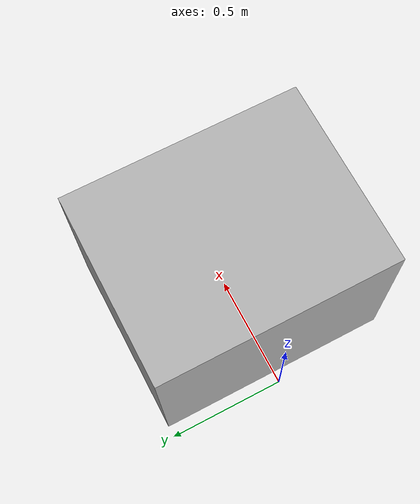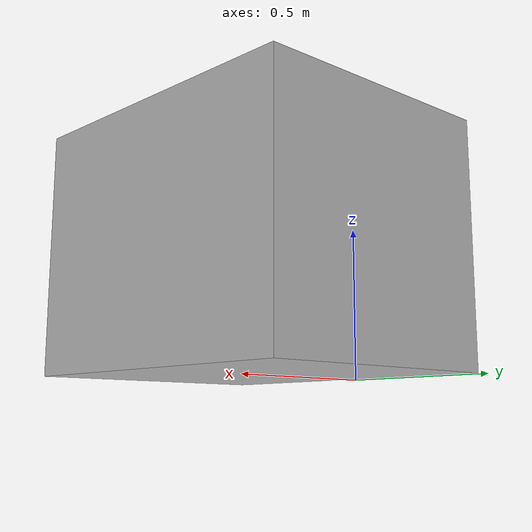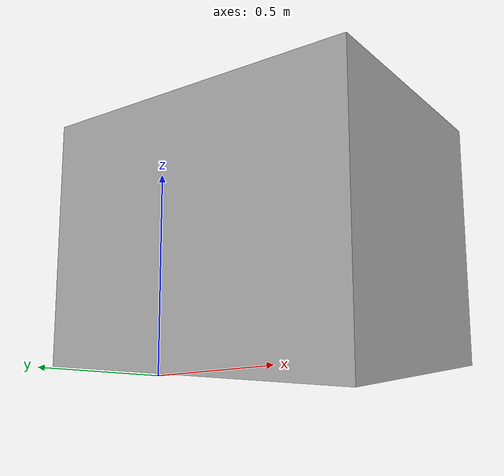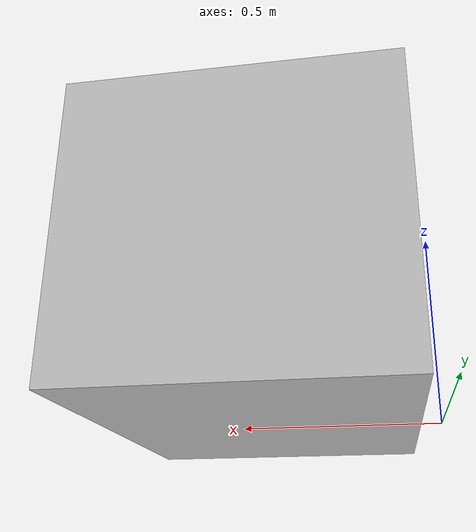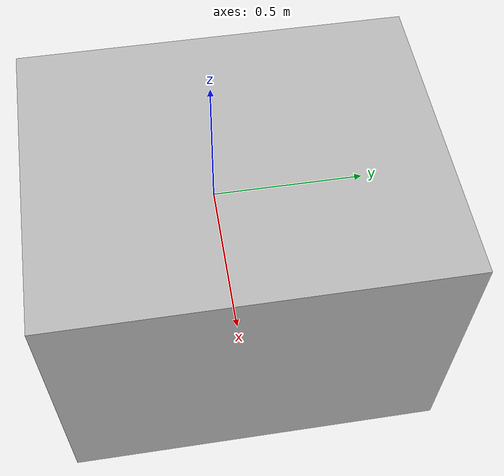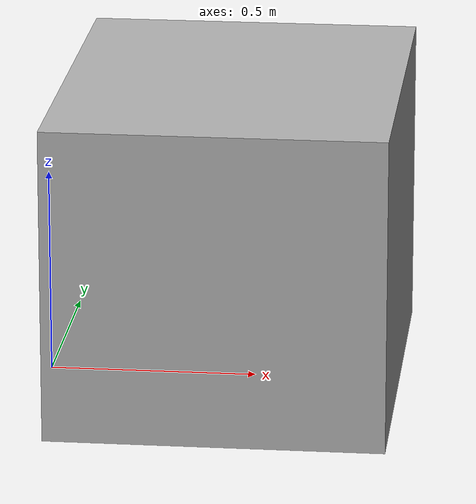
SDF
<?xml version="1.0" ?>
<sdf version="1.6">
  <model name="gesture_table">
    <static>true</static>
    <link name="link">
      <pose>0.45 0 0.375 0 0 0</pose>
      <collision name="collision">
        <geometry>
          <box>
            <size>0.8 1.0 0.75</size>
          </box>
        </geometry>
      </collision>
      <visual name="visual">
        <geometry>
          <box>
            <size>0.8 1.0 0.75</size>
          </box>
        </geometry>
        <material>
          <ambient>0.6 0.6 0.6 1</ambient>
          <diffuse>0.7 0.7 0.7 1</diffuse>
        </material>
      </visual>
    </link>
  </model>
</sdf>
